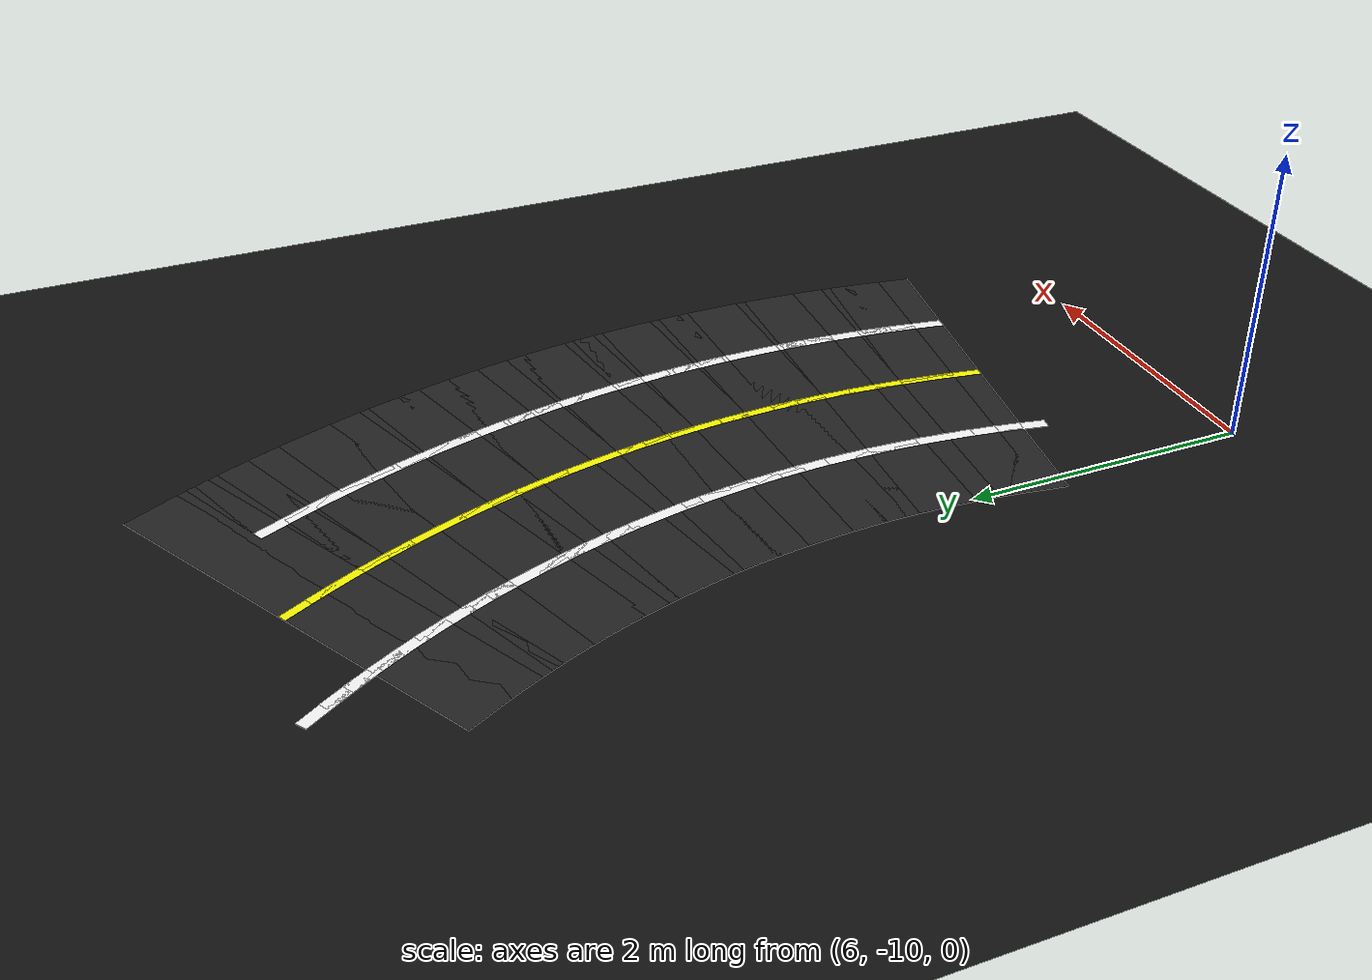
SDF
<sdf version="1.6">
 <world name="figure8_world">
  <model name="ground_plane">
   <static>true</static>
   <link name="link">
    <collision name="collision">
     <geometry><plane><normal>0 0 1</normal><size>120 120</size></plane></geometry>
    </collision>
    <visual name="visual">
     <geometry><plane><normal>0 0 1</normal><size>120 120</size></plane></geometry>
     <material><ambient>0.08 0.08 0.08 1</ambient><diffuse>0.08 0.08 0.08 1</diffuse></material>
    </visual>
   </link>
  </model>
  <model name="seg_00756">
   <static>true</static>
   <pose>7.5000 -7.5000 0.0010 0 0 -1.5708</pose>
   <link name="link">
    <collision name="collision"><geometry><box><size>0.4000 3.0000 0.002</size></box></geometry></collision>
    <visual name="visual">
     <geometry><box><size>0.4000 3.0000 0.002</size></box></geometry>
     <material><ambient>0.14 0.14 0.14 1</ambient><diffuse>0.14 0.14 0.14 1</diffuse></material>
    </visual>
   </link>
  </model>
  <model name="seg_00757">
   <static>true</static>
   <pose>8.2500 -7.5000 0.0030 0 0 -1.5708</pose>
   <link name="link">
    <collision name="collision"><geometry><box><size>0.4000 0.0800 0.002</size></box></geometry></collision>
    <visual name="visual">
     <geometry><box><size>0.4000 0.0800 0.002</size></box></geometry>
     <material><ambient>1 1 1 1</ambient><diffuse>1 1 1 1</diffuse></material>
    </visual>
   </link>
  </model>
  <model name="seg_00758">
   <static>true</static>
   <pose>6.7500 -7.5000 0.0030 0 0 -1.5708</pose>
   <link name="link">
    <collision name="collision"><geometry><box><size>0.4000 0.0800 0.002</size></box></geometry></collision>
    <visual name="visual">
     <geometry><box><size>0.4000 0.0800 0.002</size></box></geometry>
     <material><ambient>1 1 1 1</ambient><diffuse>1 1 1 1</diffuse></material>
    </visual>
   </link>
  </model>
  <model name="seg_00759">
   <static>true</static>
   <pose>7.5000 -7.5000 0.0030 0 0 -1.5708</pose>
   <link name="link">
    <collision name="collision"><geometry><box><size>0.4000 0.0600 0.002</size></box></geometry></collision>
    <visual name="visual">
     <geometry><box><size>0.4000 0.0600 0.002</size></box></geometry>
     <material><ambient>1 1 0 1</ambient><diffuse>1 1 0 1</diffuse></material>
    </visual>
   </link>
  </model>
  <model name="seg_00760">
   <static>true</static>
   <pose>7.4974 -7.6963 0.0010 0 0 -1.5970</pose>
   <link name="link">
    <collision name="collision"><geometry><box><size>0.4000 3.0000 0.002</size></box></geometry></collision>
    <visual name="visual">
     <geometry><box><size>0.4000 3.0000 0.002</size></box></geometry>
     <material><ambient>0.14 0.14 0.14 1</ambient><diffuse>0.14 0.14 0.14 1</diffuse></material>
    </visual>
   </link>
  </model>
  <model name="seg_00761">
   <static>true</static>
   <pose>8.2472 -7.7160 0.0030 0 0 -1.5970</pose>
   <link name="link">
    <collision name="collision"><geometry><box><size>0.4000 0.0800 0.002</size></box></geometry></collision>
    <visual name="visual">
     <geometry><box><size>0.4000 0.0800 0.002</size></box></geometry>
     <material><ambient>1 1 1 1</ambient><diffuse>1 1 1 1</diffuse></material>
    </visual>
   </link>
  </model>
  <model name="seg_00762">
   <static>true</static>
   <pose>6.7477 -7.6767 0.0030 0 0 -1.5970</pose>
   <link name="link">
    <collision name="collision"><geometry><box><size>0.4000 0.0800 0.002</size></box></geometry></collision>
    <visual name="visual">
     <geometry><box><size>0.4000 0.0800 0.002</size></box></geometry>
     <material><ambient>1 1 1 1</ambient><diffuse>1 1 1 1</diffuse></material>
    </visual>
   </link>
  </model>
  <model name="seg_00763">
   <static>true</static>
   <pose>7.4974 -7.6963 0.0030 0 0 -1.5970</pose>
   <link name="link">
    <collision name="collision"><geometry><box><size>0.4000 0.0600 0.002</size></box></geometry></collision>
    <visual name="visual">
     <geometry><box><size>0.4000 0.0600 0.002</size></box></geometry>
     <material><ambient>1 1 0 1</ambient><diffuse>1 1 0 1</diffuse></material>
    </visual>
   </link>
  </model>
  <model name="seg_00764">
   <static>true</static>
   <pose>7.4897 -7.8925 0.0010 0 0 -1.6232</pose>
   <link name="link">
    <collision name="collision"><geometry><box><size>0.4000 3.0000 0.002</size></box></geometry></collision>
    <visual name="visual">
     <geometry><box><size>0.4000 3.0000 0.002</size></box></geometry>
     <material><ambient>0.14 0.14 0.14 1</ambient><diffuse>0.14 0.14 0.14 1</diffuse></material>
    </visual>
   </link>
  </model>
  <model name="seg_00765">
   <static>true</static>
   <pose>8.2387 -7.9318 0.0030 0 0 -1.6232</pose>
   <link name="link">
    <collision name="collision"><geometry><box><size>0.4000 0.0800 0.002</size></box></geometry></collision>
    <visual name="visual">
     <geometry><box><size>0.4000 0.0800 0.002</size></box></geometry>
     <material><ambient>1 1 1 1</ambient><diffuse>1 1 1 1</diffuse></material>
    </visual>
   </link>
  </model>
  <model name="seg_00766">
   <static>true</static>
   <pose>6.7407 -7.8533 0.0030 0 0 -1.6232</pose>
   <link name="link">
    <collision name="collision"><geometry><box><size>0.4000 0.0800 0.002</size></box></geometry></collision>
    <visual name="visual">
     <geometry><box><size>0.4000 0.0800 0.002</size></box></geometry>
     <material><ambient>1 1 1 1</ambient><diffuse>1 1 1 1</diffuse></material>
    </visual>
   </link>
  </model>
  <model name="seg_00767">
   <static>true</static>
   <pose>7.4897 -7.8925 0.0030 0 0 -1.6232</pose>
   <link name="link">
    <collision name="collision"><geometry><box><size>0.4000 0.0600 0.002</size></box></geometry></collision>
    <visual name="visual">
     <geometry><box><size>0.4000 0.0600 0.002</size></box></geometry>
     <material><ambient>1 1 0 1</ambient><diffuse>1 1 0 1</diffuse></material>
    </visual>
   </link>
  </model>
  <model name="seg_00768">
   <static>true</static>
   <pose>7.4769 -8.0884 0.0010 0 0 -1.6493</pose>
   <link name="link">
    <collision name="collision"><geometry><box><size>0.4000 3.0000 0.002</size></box></geometry></collision>
    <visual name="visual">
     <geometry><box><size>0.4000 3.0000 0.002</size></box></geometry>
     <material><ambient>0.14 0.14 0.14 1</ambient><diffuse>0.14 0.14 0.14 1</diffuse></material>
    </visual>
   </link>
  </model>
  <model name="seg_00769">
   <static>true</static>
   <pose>8.2246 -8.1473 0.0030 0 0 -1.6493</pose>
   <link name="link">
    <collision name="collision"><geometry><box><size>0.4000 0.0800 0.002</size></box></geometry></collision>
    <visual name="visual">
     <geometry><box><size>0.4000 0.0800 0.002</size></box></geometry>
     <material><ambient>1 1 1 1</ambient><diffuse>1 1 1 1</diffuse></material>
    </visual>
   </link>
  </model>
  <model name="seg_00770">
   <static>true</static>
   <pose>6.7292 -8.0296 0.0030 0 0 -1.6493</pose>
   <link name="link">
    <collision name="collision"><geometry><box><size>0.4000 0.0800 0.002</size></box></geometry></collision>
    <visual name="visual">
     <geometry><box><size>0.4000 0.0800 0.002</size></box></geometry>
     <material><ambient>1 1 1 1</ambient><diffuse>1 1 1 1</diffuse></material>
    </visual>
   </link>
  </model>
  <model name="seg_00771">
   <static>true</static>
   <pose>7.4769 -8.0884 0.0030 0 0 -1.6493</pose>
   <link name="link">
    <collision name="collision"><geometry><box><size>0.4000 0.0600 0.002</size></box></geometry></collision>
    <visual name="visual">
     <geometry><box><size>0.4000 0.0600 0.002</size></box></geometry>
     <material><ambient>1 1 0 1</ambient><diffuse>1 1 0 1</diffuse></material>
    </visual>
   </link>
  </model>
  <model name="seg_00772">
   <static>true</static>
   <pose>7.4589 -8.2840 0.0010 0 0 -1.6755</pose>
   <link name="link">
    <collision name="collision"><geometry><box><size>0.4000 3.0000 0.002</size></box></geometry></collision>
    <visual name="visual">
     <geometry><box><size>0.4000 3.0000 0.002</size></box></geometry>
     <material><ambient>0.14 0.14 0.14 1</ambient><diffuse>0.14 0.14 0.14 1</diffuse></material>
    </visual>
   </link>
  </model>
  <model name="seg_00773">
   <static>true</static>
   <pose>8.2048 -8.3624 0.0030 0 0 -1.6755</pose>
   <link name="link">
    <collision name="collision"><geometry><box><size>0.4000 0.0800 0.002</size></box></geometry></collision>
    <visual name="visual">
     <geometry><box><size>0.4000 0.0800 0.002</size></box></geometry>
     <material><ambient>1 1 1 1</ambient><diffuse>1 1 1 1</diffuse></material>
    </visual>
   </link>
  </model>
  <model name="seg_00774">
   <static>true</static>
   <pose>6.7130 -8.2056 0.0030 0 0 -1.6755</pose>
   <link name="link">
    <collision name="collision"><geometry><box><size>0.4000 0.0800 0.002</size></box></geometry></collision>
    <visual name="visual">
     <geometry><box><size>0.4000 0.0800 0.002</size></box></geometry>
     <material><ambient>1 1 1 1</ambient><diffuse>1 1 1 1</diffuse></material>
    </visual>
   </link>
  </model>
  <model name="seg_00775">
   <static>true</static>
   <pose>7.4589 -8.2840 0.0030 0 0 -1.6755</pose>
   <link name="link">
    <collision name="collision"><geometry><box><size>0.4000 0.0600 0.002</size></box></geometry></collision>
    <visual name="visual">
     <geometry><box><size>0.4000 0.0600 0.002</size></box></geometry>
     <material><ambient>1 1 0 1</ambient><diffuse>1 1 0 1</diffuse></material>
    </visual>
   </link>
  </model>
  <model name="seg_00776">
   <static>true</static>
   <pose>7.4358 -8.4789 0.0010 0 0 -1.7017</pose>
   <link name="link">
    <collision name="collision"><geometry><box><size>0.4000 3.0000 0.002</size></box></geometry></collision>
    <visual name="visual">
     <geometry><box><size>0.4000 3.0000 0.002</size></box></geometry>
     <material><ambient>0.14 0.14 0.14 1</ambient><diffuse>0.14 0.14 0.14 1</diffuse></material>
    </visual>
   </link>
  </model>
  <model name="seg_00777">
   <static>true</static>
   <pose>8.1794 -8.5768 0.0030 0 0 -1.7017</pose>
   <link name="link">
    <collision name="collision"><geometry><box><size>0.4000 0.0800 0.002</size></box></geometry></collision>
    <visual name="visual">
     <geometry><box><size>0.4000 0.0800 0.002</size></box></geometry>
     <material><ambient>1 1 1 1</ambient><diffuse>1 1 1 1</diffuse></material>
    </visual>
   </link>
  </model>
  <model name="seg_00778">
   <static>true</static>
   <pose>6.6923 -8.3811 0.0030 0 0 -1.7017</pose>
   <link name="link">
    <collision name="collision"><geometry><box><size>0.4000 0.0800 0.002</size></box></geometry></collision>
    <visual name="visual">
     <geometry><box><size>0.4000 0.0800 0.002</size></box></geometry>
     <material><ambient>1 1 1 1</ambient><diffuse>1 1 1 1</diffuse></material>
    </visual>
   </link>
  </model>
  <model name="seg_00779">
   <static>true</static>
   <pose>7.4358 -8.4789 0.0030 0 0 -1.7017</pose>
   <link name="link">
    <collision name="collision"><geometry><box><size>0.4000 0.0600 0.002</size></box></geometry></collision>
    <visual name="visual">
     <geometry><box><size>0.4000 0.0600 0.002</size></box></geometry>
     <material><ambient>1 1 0 1</ambient><diffuse>1 1 0 1</diffuse></material>
    </visual>
   </link>
  </model>
  <model name="seg_00780">
   <static>true</static>
   <pose>7.4077 -8.6733 0.0010 0 0 -1.7279</pose>
   <link name="link">
    <collision name="collision"><geometry><box><size>0.4000 3.0000 0.002</size></box></geometry></collision>
    <visual name="visual">
     <geometry><box><size>0.4000 3.0000 0.002</size></box></geometry>
     <material><ambient>0.14 0.14 0.14 1</ambient><diffuse>0.14 0.14 0.14 1</diffuse></material>
    </visual>
   </link>
  </model>
  <model name="seg_00781">
   <static>true</static>
   <pose>8.1484 -8.7906 0.0030 0 0 -1.7279</pose>
   <link name="link">
    <collision name="collision"><geometry><box><size>0.4000 0.0800 0.002</size></box></geometry></collision>
    <visual name="visual">
     <geometry><box><size>0.4000 0.0800 0.002</size></box></geometry>
     <material><ambient>1 1 1 1</ambient><diffuse>1 1 1 1</diffuse></material>
    </visual>
   </link>
  </model>
  <model name="seg_00782">
   <static>true</static>
   <pose>6.6669 -8.5559 0.0030 0 0 -1.7279</pose>
   <link name="link">
    <collision name="collision"><geometry><box><size>0.4000 0.0800 0.002</size></box></geometry></collision>
    <visual name="visual">
     <geometry><box><size>0.4000 0.0800 0.002</size></box></geometry>
     <material><ambient>1 1 1 1</ambient><diffuse>1 1 1 1</diffuse></material>
    </visual>
   </link>
  </model>
  <model name="seg_00783">
   <static>true</static>
   <pose>7.4077 -8.6733 0.0030 0 0 -1.7279</pose>
   <link name="link">
    <collision name="collision"><geometry><box><size>0.4000 0.0600 0.002</size></box></geometry></collision>
    <visual name="visual">
     <geometry><box><size>0.4000 0.0600 0.002</size></box></geometry>
     <material><ambient>1 1 0 1</ambient><diffuse>1 1 0 1</diffuse></material>
    </visual>
   </link>
  </model>
  <model name="seg_00786">
   <static>true</static>
   <pose>6.6370 -8.7301 0.0030 0 0 -1.7541</pose>
   <link name="link">
    <collision name="collision"><geometry><box><size>0.4000 0.0800 0.002</size></box></geometry></collision>
    <visual name="visual">
     <geometry><box><size>0.4000 0.0800 0.002</size></box></geometry>
     <material><ambient>1 1 1 1</ambient><diffuse>1 1 1 1</diffuse></material>
    </visual>
   </link>
  </model>
  <model name="seg_01426">
   <static>true</static>
   <pose>5.6610 -3.8237 0.0030 0 0 -0.9948</pose>
   <link name="link">
    <collision name="collision"><geometry><box><size>0.4000 0.0800 0.002</size></box></geometry></collision>
    <visual name="visual">
     <geometry><box><size>0.4000 0.0800 0.002</size></box></geometry>
     <material><ambient>1 1 1 1</ambient><diffuse>1 1 1 1</diffuse></material>
    </visual>
   </link>
  </model>
  <model name="seg_01430">
   <static>true</static>
   <pose>5.7553 -3.9731 0.0030 0 0 -1.0210</pose>
   <link name="link">
    <collision name="collision"><geometry><box><size>0.4000 0.0800 0.002</size></box></geometry></collision>
    <visual name="visual">
     <geometry><box><size>0.4000 0.0800 0.002</size></box></geometry>
     <material><ambient>1 1 1 1</ambient><diffuse>1 1 1 1</diffuse></material>
    </visual>
   </link>
  </model>
  <model name="seg_01434">
   <static>true</static>
   <pose>5.8457 -4.1250 0.0030 0 0 -1.0472</pose>
   <link name="link">
    <collision name="collision"><geometry><box><size>0.4000 0.0800 0.002</size></box></geometry></collision>
    <visual name="visual">
     <geometry><box><size>0.4000 0.0800 0.002</size></box></geometry>
     <material><ambient>1 1 1 1</ambient><diffuse>1 1 1 1</diffuse></material>
    </visual>
   </link>
  </model>
  <model name="seg_01436">
   <static>true</static>
   <pose>6.5911 -3.9213 0.0010 0 0 -1.0734</pose>
   <link name="link">
    <collision name="collision"><geometry><box><size>0.4000 3.0000 0.002</size></box></geometry></collision>
    <visual name="visual">
     <geometry><box><size>0.4000 3.0000 0.002</size></box></geometry>
     <material><ambient>0.14 0.14 0.14 1</ambient><diffuse>0.14 0.14 0.14 1</diffuse></material>
    </visual>
   </link>
  </model>
  <model name="seg_01438">
   <static>true</static>
   <pose>5.9320 -4.2792 0.0030 0 0 -1.0734</pose>
   <link name="link">
    <collision name="collision"><geometry><box><size>0.4000 0.0800 0.002</size></box></geometry></collision>
    <visual name="visual">
     <geometry><box><size>0.4000 0.0800 0.002</size></box></geometry>
     <material><ambient>1 1 1 1</ambient><diffuse>1 1 1 1</diffuse></material>
    </visual>
   </link>
  </model>
  <model name="seg_01439">
   <static>true</static>
   <pose>6.5911 -3.9213 0.0030 0 0 -1.0734</pose>
   <link name="link">
    <collision name="collision"><geometry><box><size>0.4000 0.0600 0.002</size></box></geometry></collision>
    <visual name="visual">
     <geometry><box><size>0.4000 0.0600 0.002</size></box></geometry>
     <material><ambient>1 1 0 1</ambient><diffuse>1 1 0 1</diffuse></material>
    </visual>
   </link>
  </model>
  <model name="seg_01440">
   <static>true</static>
   <pose>6.6825 -4.0951 0.0010 0 0 -1.0996</pose>
   <link name="link">
    <collision name="collision"><geometry><box><size>0.4000 3.0000 0.002</size></box></geometry></collision>
    <visual name="visual">
     <geometry><box><size>0.4000 3.0000 0.002</size></box></geometry>
     <material><ambient>0.14 0.14 0.14 1</ambient><diffuse>0.14 0.14 0.14 1</diffuse></material>
    </visual>
   </link>
  </model>
  <model name="seg_01442">
   <static>true</static>
   <pose>6.0143 -4.4356 0.0030 0 0 -1.0996</pose>
   <link name="link">
    <collision name="collision"><geometry><box><size>0.4000 0.0800 0.002</size></box></geometry></collision>
    <visual name="visual">
     <geometry><box><size>0.4000 0.0800 0.002</size></box></geometry>
     <material><ambient>1 1 1 1</ambient><diffuse>1 1 1 1</diffuse></material>
    </visual>
   </link>
  </model>
  <model name="seg_01443">
   <static>true</static>
   <pose>6.6825 -4.0951 0.0030 0 0 -1.0996</pose>
   <link name="link">
    <collision name="collision"><geometry><box><size>0.4000 0.0600 0.002</size></box></geometry></collision>
    <visual name="visual">
     <geometry><box><size>0.4000 0.0600 0.002</size></box></geometry>
     <material><ambient>1 1 0 1</ambient><diffuse>1 1 0 1</diffuse></material>
    </visual>
   </link>
  </model>
  <model name="seg_01444">
   <static>true</static>
   <pose>6.7694 -4.2712 0.0010 0 0 -1.1257</pose>
   <link name="link">
    <collision name="collision"><geometry><box><size>0.4000 3.0000 0.002</size></box></geometry></collision>
    <visual name="visual">
     <geometry><box><size>0.4000 3.0000 0.002</size></box></geometry>
     <material><ambient>0.14 0.14 0.14 1</ambient><diffuse>0.14 0.14 0.14 1</diffuse></material>
    </visual>
   </link>
  </model>
  <model name="seg_01445">
   <static>true</static>
   <pose>7.4463 -3.9483 0.0030 0 0 -1.1257</pose>
   <link name="link">
    <collision name="collision"><geometry><box><size>0.4000 0.0800 0.002</size></box></geometry></collision>
    <visual name="visual">
     <geometry><box><size>0.4000 0.0800 0.002</size></box></geometry>
     <material><ambient>1 1 1 1</ambient><diffuse>1 1 1 1</diffuse></material>
    </visual>
   </link>
  </model>
  <model name="seg_01446">
   <static>true</static>
   <pose>6.0925 -4.5941 0.0030 0 0 -1.1257</pose>
   <link name="link">
    <collision name="collision"><geometry><box><size>0.4000 0.0800 0.002</size></box></geometry></collision>
    <visual name="visual">
     <geometry><box><size>0.4000 0.0800 0.002</size></box></geometry>
     <material><ambient>1 1 1 1</ambient><diffuse>1 1 1 1</diffuse></material>
    </visual>
   </link>
  </model>
  <model name="seg_01447">
   <static>true</static>
   <pose>6.7694 -4.2712 0.0030 0 0 -1.1257</pose>
   <link name="link">
    <collision name="collision"><geometry><box><size>0.4000 0.0600 0.002</size></box></geometry></collision>
    <visual name="visual">
     <geometry><box><size>0.4000 0.0600 0.002</size></box></geometry>
     <material><ambient>1 1 0 1</ambient><diffuse>1 1 0 1</diffuse></material>
    </visual>
   </link>
  </model>
  <model name="seg_01448">
   <static>true</static>
   <pose>6.8516 -4.4495 0.0010 0 0 -1.1519</pose>
   <link name="link">
    <collision name="collision"><geometry><box><size>0.4000 3.0000 0.002</size></box></geometry></collision>
    <visual name="visual">
     <geometry><box><size>0.4000 3.0000 0.002</size></box></geometry>
     <material><ambient>0.14 0.14 0.14 1</ambient><diffuse>0.14 0.14 0.14 1</diffuse></material>
    </visual>
   </link>
  </model>
  <model name="seg_01449">
   <static>true</static>
   <pose>7.5368 -4.1444 0.0030 0 0 -1.1519</pose>
   <link name="link">
    <collision name="collision"><geometry><box><size>0.4000 0.0800 0.002</size></box></geometry></collision>
    <visual name="visual">
     <geometry><box><size>0.4000 0.0800 0.002</size></box></geometry>
     <material><ambient>1 1 1 1</ambient><diffuse>1 1 1 1</diffuse></material>
    </visual>
   </link>
  </model>
  <model name="seg_01450">
   <static>true</static>
   <pose>6.1664 -4.7545 0.0030 0 0 -1.1519</pose>
   <link name="link">
    <collision name="collision"><geometry><box><size>0.4000 0.0800 0.002</size></box></geometry></collision>
    <visual name="visual">
     <geometry><box><size>0.4000 0.0800 0.002</size></box></geometry>
     <material><ambient>1 1 1 1</ambient><diffuse>1 1 1 1</diffuse></material>
    </visual>
   </link>
  </model>
  <model name="seg_01451">
   <static>true</static>
   <pose>6.8516 -4.4495 0.0030 0 0 -1.1519</pose>
   <link name="link">
    <collision name="collision"><geometry><box><size>0.4000 0.0600 0.002</size></box></geometry></collision>
    <visual name="visual">
     <geometry><box><size>0.4000 0.0600 0.002</size></box></geometry>
     <material><ambient>1 1 0 1</ambient><diffuse>1 1 0 1</diffuse></material>
    </visual>
   </link>
  </model>
  <model name="seg_01452">
   <static>true</static>
   <pose>6.9291 -4.6299 0.0010 0 0 -1.1781</pose>
   <link name="link">
    <collision name="collision"><geometry><box><size>0.4000 3.0000 0.002</size></box></geometry></collision>
    <visual name="visual">
     <geometry><box><size>0.4000 3.0000 0.002</size></box></geometry>
     <material><ambient>0.14 0.14 0.14 1</ambient><diffuse>0.14 0.14 0.14 1</diffuse></material>
    </visual>
   </link>
  </model>
  <model name="seg_01453">
   <static>true</static>
   <pose>7.6220 -4.3429 0.0030 0 0 -1.1781</pose>
   <link name="link">
    <collision name="collision"><geometry><box><size>0.4000 0.0800 0.002</size></box></geometry></collision>
    <visual name="visual">
     <geometry><box><size>0.4000 0.0800 0.002</size></box></geometry>
     <material><ambient>1 1 1 1</ambient><diffuse>1 1 1 1</diffuse></material>
    </visual>
   </link>
  </model>
  <model name="seg_01454">
   <static>true</static>
   <pose>6.2362 -4.9169 0.0030 0 0 -1.1781</pose>
   <link name="link">
    <collision name="collision"><geometry><box><size>0.4000 0.0800 0.002</size></box></geometry></collision>
    <visual name="visual">
     <geometry><box><size>0.4000 0.0800 0.002</size></box></geometry>
     <material><ambient>1 1 1 1</ambient><diffuse>1 1 1 1</diffuse></material>
    </visual>
   </link>
  </model>
  <model name="seg_01455">
   <static>true</static>
   <pose>6.9291 -4.6299 0.0030 0 0 -1.1781</pose>
   <link name="link">
    <collision name="collision"><geometry><box><size>0.4000 0.0600 0.002</size></box></geometry></collision>
    <visual name="visual">
     <geometry><box><size>0.4000 0.0600 0.002</size></box></geometry>
     <material><ambient>1 1 0 1</ambient><diffuse>1 1 0 1</diffuse></material>
    </visual>
   </link>
  </model>
  <model name="seg_01456">
   <static>true</static>
   <pose>7.0019 -4.8122 0.0010 0 0 -1.2043</pose>
   <link name="link">
    <collision name="collision"><geometry><box><size>0.4000 3.0000 0.002</size></box></geometry></collision>
    <visual name="visual">
     <geometry><box><size>0.4000 3.0000 0.002</size></box></geometry>
     <material><ambient>0.14 0.14 0.14 1</ambient><diffuse>0.14 0.14 0.14 1</diffuse></material>
    </visual>
   </link>
  </model>
  <model name="seg_01457">
   <static>true</static>
   <pose>7.7020 -4.5435 0.0030 0 0 -1.2043</pose>
   <link name="link">
    <collision name="collision"><geometry><box><size>0.4000 0.0800 0.002</size></box></geometry></collision>
    <visual name="visual">
     <geometry><box><size>0.4000 0.0800 0.002</size></box></geometry>
     <material><ambient>1 1 1 1</ambient><diffuse>1 1 1 1</diffuse></material>
    </visual>
   </link>
  </model>
  <model name="seg_01458">
   <static>true</static>
   <pose>6.3017 -5.0810 0.0030 0 0 -1.2043</pose>
   <link name="link">
    <collision name="collision"><geometry><box><size>0.4000 0.0800 0.002</size></box></geometry></collision>
    <visual name="visual">
     <geometry><box><size>0.4000 0.0800 0.002</size></box></geometry>
     <material><ambient>1 1 1 1</ambient><diffuse>1 1 1 1</diffuse></material>
    </visual>
   </link>
  </model>
  <model name="seg_01459">
   <static>true</static>
   <pose>7.0019 -4.8122 0.0030 0 0 -1.2043</pose>
   <link name="link">
    <collision name="collision"><geometry><box><size>0.4000 0.0600 0.002</size></box></geometry></collision>
    <visual name="visual">
     <geometry><box><size>0.4000 0.0600 0.002</size></box></geometry>
     <material><ambient>1 1 0 1</ambient><diffuse>1 1 0 1</diffuse></material>
    </visual>
   </link>
  </model>
  <model name="seg_01460">
   <static>true</static>
   <pose>7.0698 -4.9964 0.0010 0 0 -1.2305</pose>
   <link name="link">
    <collision name="collision"><geometry><box><size>0.4000 3.0000 0.002</size></box></geometry></collision>
    <visual name="visual">
     <geometry><box><size>0.4000 3.0000 0.002</size></box></geometry>
     <material><ambient>0.14 0.14 0.14 1</ambient><diffuse>0.14 0.14 0.14 1</diffuse></material>
    </visual>
   </link>
  </model>
  <model name="seg_01461">
   <static>true</static>
   <pose>7.7768 -4.7461 0.0030 0 0 -1.2305</pose>
   <link name="link">
    <collision name="collision"><geometry><box><size>0.4000 0.0800 0.002</size></box></geometry></collision>
    <visual name="visual">
     <geometry><box><size>0.4000 0.0800 0.002</size></box></geometry>
     <material><ambient>1 1 1 1</ambient><diffuse>1 1 1 1</diffuse></material>
    </visual>
   </link>
  </model>
  <model name="seg_01462">
   <static>true</static>
   <pose>6.3628 -5.2468 0.0030 0 0 -1.2305</pose>
   <link name="link">
    <collision name="collision"><geometry><box><size>0.4000 0.0800 0.002</size></box></geometry></collision>
    <visual name="visual">
     <geometry><box><size>0.4000 0.0800 0.002</size></box></geometry>
     <material><ambient>1 1 1 1</ambient><diffuse>1 1 1 1</diffuse></material>
    </visual>
   </link>
  </model>
  <model name="seg_01463">
   <static>true</static>
   <pose>7.0698 -4.9964 0.0030 0 0 -1.2305</pose>
   <link name="link">
    <collision name="collision"><geometry><box><size>0.4000 0.0600 0.002</size></box></geometry></collision>
    <visual name="visual">
     <geometry><box><size>0.4000 0.0600 0.002</size></box></geometry>
     <material><ambient>1 1 0 1</ambient><diffuse>1 1 0 1</diffuse></material>
    </visual>
   </link>
  </model>
  <model name="seg_01464">
   <static>true</static>
   <pose>7.1329 -5.1824 0.0010 0 0 -1.2566</pose>
   <link name="link">
    <collision name="collision"><geometry><box><size>0.4000 3.0000 0.002</size></box></geometry></collision>
    <visual name="visual">
     <geometry><box><size>0.4000 3.0000 0.002</size></box></geometry>
     <material><ambient>0.14 0.14 0.14 1</ambient><diffuse>0.14 0.14 0.14 1</diffuse></material>
    </visual>
   </link>
  </model>
  <model name="seg_01465">
   <static>true</static>
   <pose>7.8462 -4.9506 0.0030 0 0 -1.2566</pose>
   <link name="link">
    <collision name="collision"><geometry><box><size>0.4000 0.0800 0.002</size></box></geometry></collision>
    <visual name="visual">
     <geometry><box><size>0.4000 0.0800 0.002</size></box></geometry>
     <material><ambient>1 1 1 1</ambient><diffuse>1 1 1 1</diffuse></material>
    </visual>
   </link>
  </model>
  <model name="seg_01466">
   <static>true</static>
   <pose>6.4196 -5.4141 0.0030 0 0 -1.2566</pose>
   <link name="link">
    <collision name="collision"><geometry><box><size>0.4000 0.0800 0.002</size></box></geometry></collision>
    <visual name="visual">
     <geometry><box><size>0.4000 0.0800 0.002</size></box></geometry>
     <material><ambient>1 1 1 1</ambient><diffuse>1 1 1 1</diffuse></material>
    </visual>
   </link>
  </model>
  <model name="seg_01467">
   <static>true</static>
   <pose>7.1329 -5.1824 0.0030 0 0 -1.2566</pose>
   <link name="link">
    <collision name="collision"><geometry><box><size>0.4000 0.0600 0.002</size></box></geometry></collision>
    <visual name="visual">
     <geometry><box><size>0.4000 0.0600 0.002</size></box></geometry>
     <material><ambient>1 1 0 1</ambient><diffuse>1 1 0 1</diffuse></material>
    </visual>
   </link>
  </model>
  <model name="seg_01468">
   <static>true</static>
   <pose>7.1911 -5.3699 0.0010 0 0 -1.2828</pose>
   <link name="link">
    <collision name="collision"><geometry><box><size>0.4000 3.0000 0.002</size></box></geometry></collision>
    <visual name="visual">
     <geometry><box><size>0.4000 3.0000 0.002</size></box></geometry>
     <material><ambient>0.14 0.14 0.14 1</ambient><diffuse>0.14 0.14 0.14 1</diffuse></material>
    </visual>
   </link>
  </model>
  <model name="seg_01469">
   <static>true</static>
   <pose>7.9103 -5.1569 0.0030 0 0 -1.2828</pose>
   <link name="link">
    <collision name="collision"><geometry><box><size>0.4000 0.0800 0.002</size></box></geometry></collision>
    <visual name="visual">
     <geometry><box><size>0.4000 0.0800 0.002</size></box></geometry>
     <material><ambient>1 1 1 1</ambient><diffuse>1 1 1 1</diffuse></material>
    </visual>
   </link>
  </model>
  <model name="seg_01470">
   <static>true</static>
   <pose>6.4720 -5.5829 0.0030 0 0 -1.2828</pose>
   <link name="link">
    <collision name="collision"><geometry><box><size>0.4000 0.0800 0.002</size></box></geometry></collision>
    <visual name="visual">
     <geometry><box><size>0.4000 0.0800 0.002</size></box></geometry>
     <material><ambient>1 1 1 1</ambient><diffuse>1 1 1 1</diffuse></material>
    </visual>
   </link>
  </model>
  <model name="seg_01471">
   <static>true</static>
   <pose>7.1911 -5.3699 0.0030 0 0 -1.2828</pose>
   <link name="link">
    <collision name="collision"><geometry><box><size>0.4000 0.0600 0.002</size></box></geometry></collision>
    <visual name="visual">
     <geometry><box><size>0.4000 0.0600 0.002</size></box></geometry>
     <material><ambient>1 1 0 1</ambient><diffuse>1 1 0 1</diffuse></material>
    </visual>
   </link>
  </model>
  <model name="seg_01472">
   <static>true</static>
   <pose>7.2444 -5.5589 0.0010 0 0 -1.3090</pose>
   <link name="link">
    <collision name="collision"><geometry><box><size>0.4000 3.0000 0.002</size></box></geometry></collision>
    <visual name="visual">
     <geometry><box><size>0.4000 3.0000 0.002</size></box></geometry>
     <material><ambient>0.14 0.14 0.14 1</ambient><diffuse>0.14 0.14 0.14 1</diffuse></material>
    </visual>
   </link>
  </model>
  <model name="seg_01473">
   <static>true</static>
   <pose>7.9689 -5.3647 0.0030 0 0 -1.3090</pose>
   <link name="link">
    <collision name="collision"><geometry><box><size>0.4000 0.0800 0.002</size></box></geometry></collision>
    <visual name="visual">
     <geometry><box><size>0.4000 0.0800 0.002</size></box></geometry>
     <material><ambient>1 1 1 1</ambient><diffuse>1 1 1 1</diffuse></material>
    </visual>
   </link>
  </model>
  <model name="seg_01474">
   <static>true</static>
   <pose>6.5200 -5.7530 0.0030 0 0 -1.3090</pose>
   <link name="link">
    <collision name="collision"><geometry><box><size>0.4000 0.0800 0.002</size></box></geometry></collision>
    <visual name="visual">
     <geometry><box><size>0.4000 0.0800 0.002</size></box></geometry>
     <material><ambient>1 1 1 1</ambient><diffuse>1 1 1 1</diffuse></material>
    </visual>
   </link>
  </model>
  <model name="seg_01475">
   <static>true</static>
   <pose>7.2444 -5.5589 0.0030 0 0 -1.3090</pose>
   <link name="link">
    <collision name="collision"><geometry><box><size>0.4000 0.0600 0.002</size></box></geometry></collision>
    <visual name="visual">
     <geometry><box><size>0.4000 0.0600 0.002</size></box></geometry>
     <material><ambient>1 1 0 1</ambient><diffuse>1 1 0 1</diffuse></material>
    </visual>
   </link>
  </model>
  <model name="seg_01476">
   <static>true</static>
   <pose>7.2928 -5.7492 0.0010 0 0 -1.3352</pose>
   <link name="link">
    <collision name="collision"><geometry><box><size>0.4000 3.0000 0.002</size></box></geometry></collision>
    <visual name="visual">
     <geometry><box><size>0.4000 3.0000 0.002</size></box></geometry>
     <material><ambient>0.14 0.14 0.14 1</ambient><diffuse>0.14 0.14 0.14 1</diffuse></material>
    </visual>
   </link>
  </model>
  <model name="seg_01477">
   <static>true</static>
   <pose>8.0221 -5.5741 0.0030 0 0 -1.3352</pose>
   <link name="link">
    <collision name="collision"><geometry><box><size>0.4000 0.0800 0.002</size></box></geometry></collision>
    <visual name="visual">
     <geometry><box><size>0.4000 0.0800 0.002</size></box></geometry>
     <material><ambient>1 1 1 1</ambient><diffuse>1 1 1 1</diffuse></material>
    </visual>
   </link>
  </model>
  <model name="seg_01478">
   <static>true</static>
   <pose>6.5635 -5.9242 0.0030 0 0 -1.3352</pose>
   <link name="link">
    <collision name="collision"><geometry><box><size>0.4000 0.0800 0.002</size></box></geometry></collision>
    <visual name="visual">
     <geometry><box><size>0.4000 0.0800 0.002</size></box></geometry>
     <material><ambient>1 1 1 1</ambient><diffuse>1 1 1 1</diffuse></material>
    </visual>
   </link>
  </model>
  <model name="seg_01479">
   <static>true</static>
   <pose>7.2928 -5.7492 0.0030 0 0 -1.3352</pose>
   <link name="link">
    <collision name="collision"><geometry><box><size>0.4000 0.0600 0.002</size></box></geometry></collision>
    <visual name="visual">
     <geometry><box><size>0.4000 0.0600 0.002</size></box></geometry>
     <material><ambient>1 1 0 1</ambient><diffuse>1 1 0 1</diffuse></material>
    </visual>
   </link>
  </model>
  <model name="seg_01480">
   <static>true</static>
   <pose>7.3361 -5.9407 0.0010 0 0 -1.3614</pose>
   <link name="link">
    <collision name="collision"><geometry><box><size>0.4000 3.0000 0.002</size></box></geometry></collision>
    <visual name="visual">
     <geometry><box><size>0.4000 3.0000 0.002</size></box></geometry>
     <material><ambient>0.14 0.14 0.14 1</ambient><diffuse>0.14 0.14 0.14 1</diffuse></material>
    </visual>
   </link>
  </model>
  <model name="seg_01481">
   <static>true</static>
   <pose>8.0697 -5.7847 0.0030 0 0 -1.3614</pose>
   <link name="link">
    <collision name="collision"><geometry><box><size>0.4000 0.0800 0.002</size></box></geometry></collision>
    <visual name="visual">
     <geometry><box><size>0.4000 0.0800 0.002</size></box></geometry>
     <material><ambient>1 1 1 1</ambient><diffuse>1 1 1 1</diffuse></material>
    </visual>
   </link>
  </model>
  <model name="seg_01482">
   <static>true</static>
   <pose>6.6025 -6.0966 0.0030 0 0 -1.3614</pose>
   <link name="link">
    <collision name="collision"><geometry><box><size>0.4000 0.0800 0.002</size></box></geometry></collision>
    <visual name="visual">
     <geometry><box><size>0.4000 0.0800 0.002</size></box></geometry>
     <material><ambient>1 1 1 1</ambient><diffuse>1 1 1 1</diffuse></material>
    </visual>
   </link>
  </model>
  <model name="seg_01483">
   <static>true</static>
   <pose>7.3361 -5.9407 0.0030 0 0 -1.3614</pose>
   <link name="link">
    <collision name="collision"><geometry><box><size>0.4000 0.0600 0.002</size></box></geometry></collision>
    <visual name="visual">
     <geometry><box><size>0.4000 0.0600 0.002</size></box></geometry>
     <material><ambient>1 1 0 1</ambient><diffuse>1 1 0 1</diffuse></material>
    </visual>
   </link>
  </model>
  <model name="seg_01484">
   <static>true</static>
   <pose>7.3744 -6.1332 0.0010 0 0 -1.3875</pose>
   <link name="link">
    <collision name="collision"><geometry><box><size>0.4000 3.0000 0.002</size></box></geometry></collision>
    <visual name="visual">
     <geometry><box><size>0.4000 3.0000 0.002</size></box></geometry>
     <material><ambient>0.14 0.14 0.14 1</ambient><diffuse>0.14 0.14 0.14 1</diffuse></material>
    </visual>
   </link>
  </model>
  <model name="seg_01485">
   <static>true</static>
   <pose>8.1119 -5.9966 0.0030 0 0 -1.3875</pose>
   <link name="link">
    <collision name="collision"><geometry><box><size>0.4000 0.0800 0.002</size></box></geometry></collision>
    <visual name="visual">
     <geometry><box><size>0.4000 0.0800 0.002</size></box></geometry>
     <material><ambient>1 1 1 1</ambient><diffuse>1 1 1 1</diffuse></material>
    </visual>
   </link>
  </model>
  <model name="seg_01486">
   <static>true</static>
   <pose>6.6370 -6.2699 0.0030 0 0 -1.3875</pose>
   <link name="link">
    <collision name="collision"><geometry><box><size>0.4000 0.0800 0.002</size></box></geometry></collision>
    <visual name="visual">
     <geometry><box><size>0.4000 0.0800 0.002</size></box></geometry>
     <material><ambient>1 1 1 1</ambient><diffuse>1 1 1 1</diffuse></material>
    </visual>
   </link>
  </model>
  <model name="seg_01487">
   <static>true</static>
   <pose>7.3744 -6.1332 0.0030 0 0 -1.3875</pose>
   <link name="link">
    <collision name="collision"><geometry><box><size>0.4000 0.0600 0.002</size></box></geometry></collision>
    <visual name="visual">
     <geometry><box><size>0.4000 0.0600 0.002</size></box></geometry>
     <material><ambient>1 1 0 1</ambient><diffuse>1 1 0 1</diffuse></material>
    </visual>
   </link>
  </model>
  <model name="seg_01488">
   <static>true</static>
   <pose>7.4077 -6.3267 0.0010 0 0 -1.4137</pose>
   <link name="link">
    <collision name="collision"><geometry><box><size>0.4000 3.0000 0.002</size></box></geometry></collision>
    <visual name="visual">
     <geometry><box><size>0.4000 3.0000 0.002</size></box></geometry>
     <material><ambient>0.14 0.14 0.14 1</ambient><diffuse>0.14 0.14 0.14 1</diffuse></material>
    </visual>
   </link>
  </model>
  <model name="seg_01489">
   <static>true</static>
   <pose>8.1484 -6.2094 0.0030 0 0 -1.4137</pose>
   <link name="link">
    <collision name="collision"><geometry><box><size>0.4000 0.0800 0.002</size></box></geometry></collision>
    <visual name="visual">
     <geometry><box><size>0.4000 0.0800 0.002</size></box></geometry>
     <material><ambient>1 1 1 1</ambient><diffuse>1 1 1 1</diffuse></material>
    </visual>
   </link>
  </model>
  <model name="seg_01490">
   <static>true</static>
   <pose>6.6669 -6.4441 0.0030 0 0 -1.4137</pose>
   <link name="link">
    <collision name="collision"><geometry><box><size>0.4000 0.0800 0.002</size></box></geometry></collision>
    <visual name="visual">
     <geometry><box><size>0.4000 0.0800 0.002</size></box></geometry>
     <material><ambient>1 1 1 1</ambient><diffuse>1 1 1 1</diffuse></material>
    </visual>
   </link>
  </model>
  <model name="seg_01491">
   <static>true</static>
   <pose>7.4077 -6.3267 0.0030 0 0 -1.4137</pose>
   <link name="link">
    <collision name="collision"><geometry><box><size>0.4000 0.0600 0.002</size></box></geometry></collision>
    <visual name="visual">
     <geometry><box><size>0.4000 0.0600 0.002</size></box></geometry>
     <material><ambient>1 1 0 1</ambient><diffuse>1 1 0 1</diffuse></material>
    </visual>
   </link>
  </model>
  <model name="seg_01492">
   <static>true</static>
   <pose>7.4358 -6.5211 0.0010 0 0 -1.4399</pose>
   <link name="link">
    <collision name="collision"><geometry><box><size>0.4000 3.0000 0.002</size></box></geometry></collision>
    <visual name="visual">
     <geometry><box><size>0.4000 3.0000 0.002</size></box></geometry>
     <material><ambient>0.14 0.14 0.14 1</ambient><diffuse>0.14 0.14 0.14 1</diffuse></material>
    </visual>
   </link>
  </model>
  <model name="seg_01493">
   <static>true</static>
   <pose>8.1794 -6.4232 0.0030 0 0 -1.4399</pose>
   <link name="link">
    <collision name="collision"><geometry><box><size>0.4000 0.0800 0.002</size></box></geometry></collision>
    <visual name="visual">
     <geometry><box><size>0.4000 0.0800 0.002</size></box></geometry>
     <material><ambient>1 1 1 1</ambient><diffuse>1 1 1 1</diffuse></material>
    </visual>
   </link>
  </model>
  <model name="seg_01494">
   <static>true</static>
   <pose>6.6923 -6.6189 0.0030 0 0 -1.4399</pose>
   <link name="link">
    <collision name="collision"><geometry><box><size>0.4000 0.0800 0.002</size></box></geometry></collision>
    <visual name="visual">
     <geometry><box><size>0.4000 0.0800 0.002</size></box></geometry>
     <material><ambient>1 1 1 1</ambient><diffuse>1 1 1 1</diffuse></material>
    </visual>
   </link>
  </model>
  <model name="seg_01495">
   <static>true</static>
   <pose>7.4358 -6.5211 0.0030 0 0 -1.4399</pose>
   <link name="link">
    <collision name="collision"><geometry><box><size>0.4000 0.0600 0.002</size></box></geometry></collision>
    <visual name="visual">
     <geometry><box><size>0.4000 0.0600 0.002</size></box></geometry>
     <material><ambient>1 1 0 1</ambient><diffuse>1 1 0 1</diffuse></material>
    </visual>
   </link>
  </model>
  <model name="seg_01496">
   <static>true</static>
   <pose>7.4589 -6.7160 0.0010 0 0 -1.4661</pose>
   <link name="link">
    <collision name="collision"><geometry><box><size>0.4000 3.0000 0.002</size></box></geometry></collision>
    <visual name="visual">
     <geometry><box><size>0.4000 3.0000 0.002</size></box></geometry>
     <material><ambient>0.14 0.14 0.14 1</ambient><diffuse>0.14 0.14 0.14 1</diffuse></material>
    </visual>
   </link>
  </model>
  <model name="seg_01497">
   <static>true</static>
   <pose>8.2048 -6.6376 0.0030 0 0 -1.4661</pose>
   <link name="link">
    <collision name="collision"><geometry><box><size>0.4000 0.0800 0.002</size></box></geometry></collision>
    <visual name="visual">
     <geometry><box><size>0.4000 0.0800 0.002</size></box></geometry>
     <material><ambient>1 1 1 1</ambient><diffuse>1 1 1 1</diffuse></material>
    </visual>
   </link>
  </model>
  <model name="seg_01498">
   <static>true</static>
   <pose>6.7130 -6.7944 0.0030 0 0 -1.4661</pose>
   <link name="link">
    <collision name="collision"><geometry><box><size>0.4000 0.0800 0.002</size></box></geometry></collision>
    <visual name="visual">
     <geometry><box><size>0.4000 0.0800 0.002</size></box></geometry>
     <material><ambient>1 1 1 1</ambient><diffuse>1 1 1 1</diffuse></material>
    </visual>
   </link>
  </model>
  <model name="seg_01499">
   <static>true</static>
   <pose>7.4589 -6.7160 0.0030 0 0 -1.4661</pose>
   <link name="link">
    <collision name="collision"><geometry><box><size>0.4000 0.0600 0.002</size></box></geometry></collision>
    <visual name="visual">
     <geometry><box><size>0.4000 0.0600 0.002</size></box></geometry>
     <material><ambient>1 1 0 1</ambient><diffuse>1 1 0 1</diffuse></material>
    </visual>
   </link>
  </model>
  <model name="seg_01500">
   <static>true</static>
   <pose>7.4769 -6.9116 0.0010 0 0 -1.4923</pose>
   <link name="link">
    <collision name="collision"><geometry><box><size>0.4000 3.0000 0.002</size></box></geometry></collision>
    <visual name="visual">
     <geometry><box><size>0.4000 3.0000 0.002</size></box></geometry>
     <material><ambient>0.14 0.14 0.14 1</ambient><diffuse>0.14 0.14 0.14 1</diffuse></material>
    </visual>
   </link>
  </model>
  <model name="seg_01501">
   <static>true</static>
   <pose>8.2246 -6.8527 0.0030 0 0 -1.4923</pose>
   <link name="link">
    <collision name="collision"><geometry><box><size>0.4000 0.0800 0.002</size></box></geometry></collision>
    <visual name="visual">
     <geometry><box><size>0.4000 0.0800 0.002</size></box></geometry>
     <material><ambient>1 1 1 1</ambient><diffuse>1 1 1 1</diffuse></material>
    </visual>
   </link>
  </model>
  <model name="seg_01502">
   <static>true</static>
   <pose>6.7292 -6.9704 0.0030 0 0 -1.4923</pose>
   <link name="link">
    <collision name="collision"><geometry><box><size>0.4000 0.0800 0.002</size></box></geometry></collision>
    <visual name="visual">
     <geometry><box><size>0.4000 0.0800 0.002</size></box></geometry>
     <material><ambient>1 1 1 1</ambient><diffuse>1 1 1 1</diffuse></material>
    </visual>
   </link>
  </model>
  <model name="seg_01503">
   <static>true</static>
   <pose>7.4769 -6.9116 0.0030 0 0 -1.4923</pose>
   <link name="link">
    <collision name="collision"><geometry><box><size>0.4000 0.0600 0.002</size></box></geometry></collision>
    <visual name="visual">
     <geometry><box><size>0.4000 0.0600 0.002</size></box></geometry>
     <material><ambient>1 1 0 1</ambient><diffuse>1 1 0 1</diffuse></material>
    </visual>
   </link>
  </model>
  <model name="seg_01504">
   <static>true</static>
   <pose>7.4897 -7.1075 0.0010 0 0 -1.5184</pose>
   <link name="link">
    <collision name="collision"><geometry><box><size>0.4000 3.0000 0.002</size></box></geometry></collision>
    <visual name="visual">
     <geometry><box><size>0.4000 3.0000 0.002</size></box></geometry>
     <material><ambient>0.14 0.14 0.14 1</ambient><diffuse>0.14 0.14 0.14 1</diffuse></material>
    </visual>
   </link>
  </model>
  <model name="seg_01505">
   <static>true</static>
   <pose>8.2387 -7.0682 0.0030 0 0 -1.5184</pose>
   <link name="link">
    <collision name="collision"><geometry><box><size>0.4000 0.0800 0.002</size></box></geometry></collision>
    <visual name="visual">
     <geometry><box><size>0.4000 0.0800 0.002</size></box></geometry>
     <material><ambient>1 1 1 1</ambient><diffuse>1 1 1 1</diffuse></material>
    </visual>
   </link>
  </model>
  <model name="seg_01506">
   <static>true</static>
   <pose>6.7407 -7.1467 0.0030 0 0 -1.5184</pose>
   <link name="link">
    <collision name="collision"><geometry><box><size>0.4000 0.0800 0.002</size></box></geometry></collision>
    <visual name="visual">
     <geometry><box><size>0.4000 0.0800 0.002</size></box></geometry>
     <material><ambient>1 1 1 1</ambient><diffuse>1 1 1 1</diffuse></material>
    </visual>
   </link>
  </model>
  <model name="seg_01507">
   <static>true</static>
   <pose>7.4897 -7.1075 0.0030 0 0 -1.5184</pose>
   <link name="link">
    <collision name="collision"><geometry><box><size>0.4000 0.0600 0.002</size></box></geometry></collision>
    <visual name="visual">
     <geometry><box><size>0.4000 0.0600 0.002</size></box></geometry>
     <material><ambient>1 1 0 1</ambient><diffuse>1 1 0 1</diffuse></material>
    </visual>
   </link>
  </model>
  <model name="seg_01508">
   <static>true</static>
   <pose>7.4974 -7.3037 0.0010 0 0 -1.5446</pose>
   <link name="link">
    <collision name="collision"><geometry><box><size>0.4000 3.0000 0.002</size></box></geometry></collision>
    <visual name="visual">
     <geometry><box><size>0.4000 3.0000 0.002</size></box></geometry>
     <material><ambient>0.14 0.14 0.14 1</ambient><diffuse>0.14 0.14 0.14 1</diffuse></material>
    </visual>
   </link>
  </model>
  <model name="seg_01509">
   <static>true</static>
   <pose>8.2472 -7.2840 0.0030 0 0 -1.5446</pose>
   <link name="link">
    <collision name="collision"><geometry><box><size>0.4000 0.0800 0.002</size></box></geometry></collision>
    <visual name="visual">
     <geometry><box><size>0.4000 0.0800 0.002</size></box></geometry>
     <material><ambient>1 1 1 1</ambient><diffuse>1 1 1 1</diffuse></material>
    </visual>
   </link>
  </model>
  <model name="seg_01510">
   <static>true</static>
   <pose>6.7477 -7.3233 0.0030 0 0 -1.5446</pose>
   <link name="link">
    <collision name="collision"><geometry><box><size>0.4000 0.0800 0.002</size></box></geometry></collision>
    <visual name="visual">
     <geometry><box><size>0.4000 0.0800 0.002</size></box></geometry>
     <material><ambient>1 1 1 1</ambient><diffuse>1 1 1 1</diffuse></material>
    </visual>
   </link>
  </model>
  <model name="seg_01511">
   <static>true</static>
   <pose>7.4974 -7.3037 0.0030 0 0 -1.5446</pose>
   <link name="link">
    <collision name="collision"><geometry><box><size>0.4000 0.0600 0.002</size></box></geometry></collision>
    <visual name="visual">
     <geometry><box><size>0.4000 0.0600 0.002</size></box></geometry>
     <material><ambient>1 1 0 1</ambient><diffuse>1 1 0 1</diffuse></material>
    </visual>
   </link>
  </model>
 </world>
</sdf>
